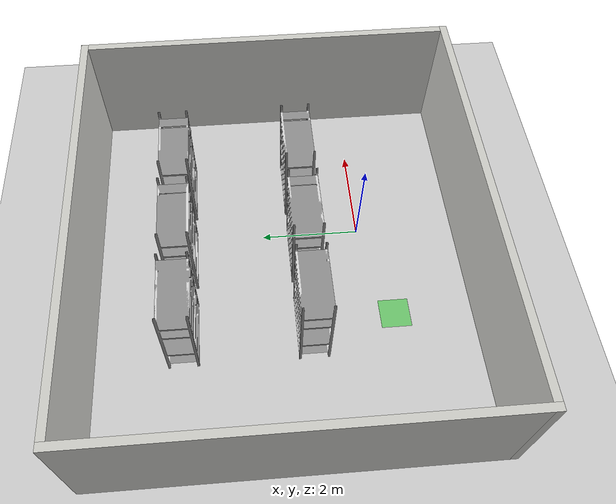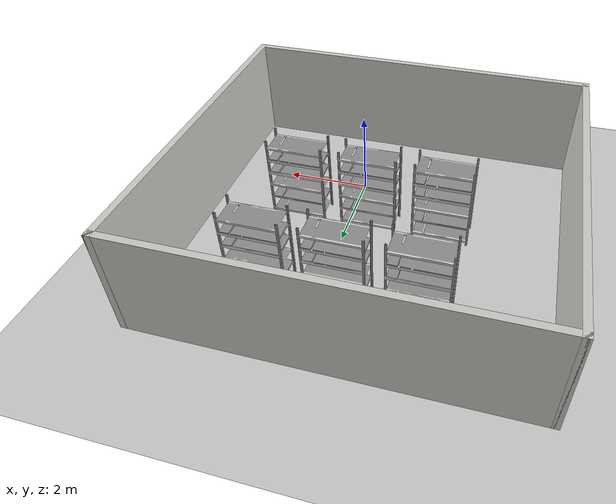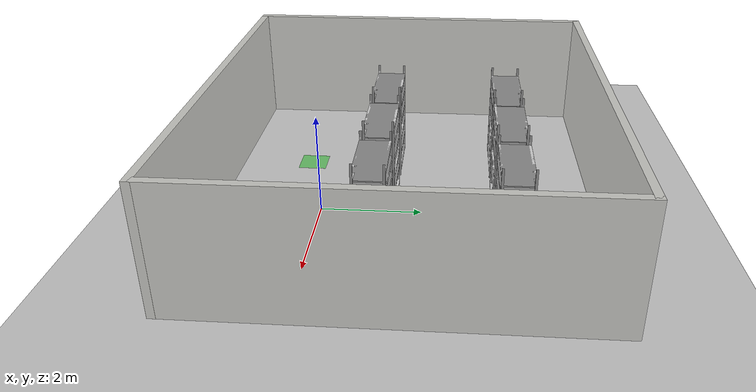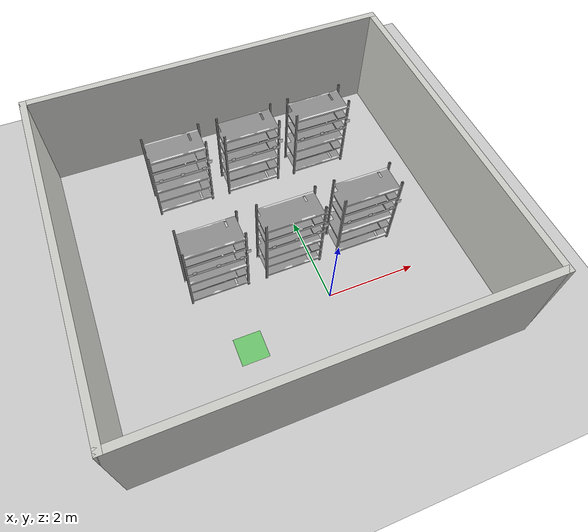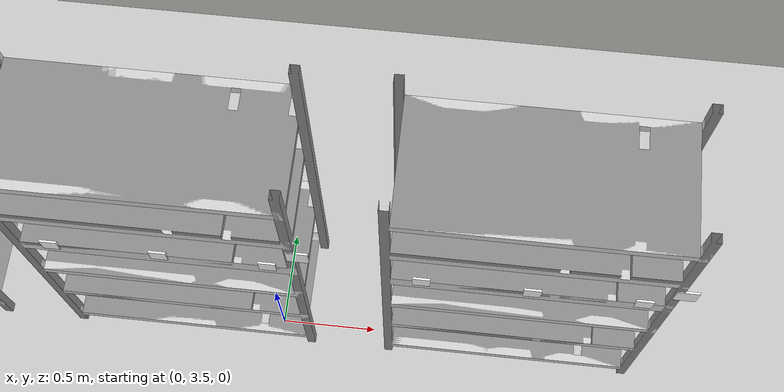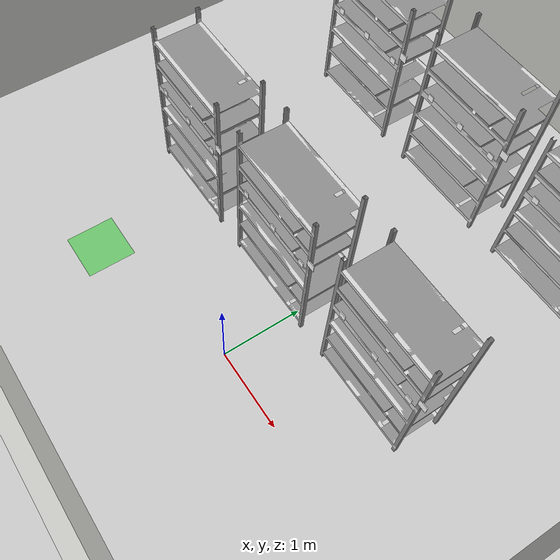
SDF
<sdf version='1.7'>
  <world name='default'>
    <model name='ground_plane'>
      <static>1</static>
      <link name='link'>
        <collision name='collision'>
          <geometry>
            <plane>
              <normal>0 0 1</normal>
              <size>100 100</size>
            </plane>
          </geometry>
          <surface>
            <friction>
              <ode>
                <mu>100</mu>
                <mu2>50</mu2>
              </ode>
              <torsional>
                <ode/>
              </torsional>
            </friction>
            <contact>
              <ode/>
            </contact>
            <bounce/>
          </surface>
          <max_contacts>10</max_contacts>
        </collision>
        <visual name='visual'>
          <cast_shadows>0</cast_shadows>
          <geometry>
            <plane>
              <normal>0 0 1</normal>
              <size>100 100</size>
            </plane>
          </geometry>
          <material>
            <script>
              <uri>file://media/materials/scripts/gazebo.material</uri>
              <name>Gazebo/Grey</name>
            </script>
          </material>
        </visual>
        <self_collide>0</self_collide>
        <enable_wind>0</enable_wind>
        <kinematic>0</kinematic>
      </link>
    </model>
    <light name='sun' type='directional'>
      <cast_shadows>1</cast_shadows>
      <pose>0 0 10 0 -0 0</pose>
      <diffuse>0.8 0.8 0.8 1</diffuse>
      <specular>0.2 0.2 0.2 1</specular>
      <attenuation>
        <range>1000</range>
        <constant>0.9</constant>
        <linear>0.01</linear>
        <quadratic>0.001</quadratic>
      </attenuation>
      <direction>-0.5 0.1 -0.9</direction>
      <spot>
        <inner_angle>0</inner_angle>
        <outer_angle>0</outer_angle>
        <falloff>0</falloff>
      </spot>
    </light>
    <model name='spawn_area_marker'>
      <static>1</static>
      <pose>-2 -0.5 0 0 -0 0</pose>
      <link name='spawn_area_link'>
        <visual name='visual'>
          <geometry>
            <box>
              <size>0.6 0.6 0.001</size>
            </box>
          </geometry>
          <material>
            <ambient>0.1 0.8 0.1 0.5</ambient>
            <diffuse>0.1 0.8 0.1 0.5</diffuse>
          </material>
          <pose>0 0 0.0005 0 -0 0</pose>
        </visual>
        <self_collide>0</self_collide>
        <enable_wind>0</enable_wind>
        <kinematic>0</kinematic>
      </link>
    </model>
    <model name='shelf_6_r1_c1'>
      <static>1</static>
      <link name='link'>
        <collision name='collision'>
          <pose>-0.665 -0.3 1 0 -0 0</pose>
          <geometry>
            <box>
              <size>1.32 0.6 2</size>
            </box>
          </geometry>
          <max_contacts>10</max_contacts>
          <surface>
            <contact>
              <ode/>
            </contact>
            <bounce/>
            <friction>
              <torsional>
                <ode/>
              </torsional>
              <ode/>
            </friction>
          </surface>
        </collision>
        <visual name='visual'>
          <geometry>
            <mesh>
              <uri>model://shelf_6/meshes/shelf_6.dae</uri>
              <scale>0.001 0.001 0.001</scale>
            </mesh>
          </geometry>
        </visual>
        <self_collide>0</self_collide>
        <enable_wind>0</enable_wind>
        <kinematic>0</kinematic>
      </link>
      <pose>-1.5 1.5 0 0 -0 0</pose>
    </model>
    <model name='stag_hd17_s1'>
      <static>1</static>
      <pose>-1.5 0.9 1.3915 1.5708 -0 0</pose>
      <link name='marker_link'>
        <collision name='collision'>
          <geometry>
            <box>
              <size>0.1 0.1 0.01</size>
            </box>
          </geometry>
          <max_contacts>10</max_contacts>
          <surface>
            <contact>
              <ode/>
            </contact>
            <bounce/>
            <friction>
              <torsional>
                <ode/>
              </torsional>
              <ode/>
            </friction>
          </surface>
        </collision>
        <visual name='visual'>
          <geometry>
            <box>
              <size>0.1 0.1 0.01</size>
            </box>
          </geometry>
          <material>
            <script>
              <uri>model://STag_marker_HD17/materials/scripts</uri>
              <uri>model://STag_marker_HD17/materials/textures</uri>
              <name>STagMarkerHD17/marker_00000</name>
            </script>
            <ambient>1 1 1 1</ambient>
            <diffuse>1 1 1 1</diffuse>
          </material>
          <pose>0 0 0.001 0 -0 0</pose>
        </visual>
        <self_collide>0</self_collide>
        <enable_wind>0</enable_wind>
        <kinematic>0</kinematic>
      </link>
    </model>
    <model name='stag_hd15_s1_m1'>
      <static>1</static>
      <pose>-2.65 0.9 1.227 1.5708 -0 0</pose>
      <link name='marker_link'>
        <collision name='collision'>
          <geometry>
            <box>
              <size>0.08 0.08 0.01</size>
            </box>
          </geometry>
          <max_contacts>10</max_contacts>
          <surface>
            <contact>
              <ode/>
            </contact>
            <bounce/>
            <friction>
              <torsional>
                <ode/>
              </torsional>
              <ode/>
            </friction>
          </surface>
        </collision>
        <visual name='visual'>
          <geometry>
            <box>
              <size>0.08 0.08 0.01</size>
            </box>
          </geometry>
          <material>
            <script>
              <uri>model://STag_marker_HD15/materials/scripts</uri>
              <uri>model://STag_marker_HD15/materials/textures</uri>
              <name>STagMarkerHD15/marker_00000</name>
            </script>
            <ambient>1 1 1 1</ambient>
            <diffuse>1 1 1 1</diffuse>
          </material>
          <pose>0 0 0.001 0 -0 0</pose>
        </visual>
        <self_collide>0</self_collide>
        <enable_wind>0</enable_wind>
        <kinematic>0</kinematic>
      </link>
    </model>
    <model name='stag_hd15_s1_m2'>
      <static>1</static>
      <pose>-2.15 0.9 1.227 1.5708 -0 0</pose>
      <link name='marker_link'>
        <collision name='collision'>
          <geometry>
            <box>
              <size>0.08 0.08 0.01</size>
            </box>
          </geometry>
          <max_contacts>10</max_contacts>
          <surface>
            <contact>
              <ode/>
            </contact>
            <bounce/>
            <friction>
              <torsional>
                <ode/>
              </torsional>
              <ode/>
            </friction>
          </surface>
        </collision>
        <visual name='visual'>
          <geometry>
            <box>
              <size>0.08 0.08 0.01</size>
            </box>
          </geometry>
          <material>
            <script>
              <uri>model://STag_marker_HD15/materials/scripts</uri>
              <uri>model://STag_marker_HD15/materials/textures</uri>
              <name>STagMarkerHD15/marker_00001</name>
            </script>
            <ambient>1 1 1 1</ambient>
            <diffuse>1 1 1 1</diffuse>
          </material>
          <pose>0 0 0.001 0 -0 0</pose>
        </visual>
        <self_collide>0</self_collide>
        <enable_wind>0</enable_wind>
        <kinematic>0</kinematic>
      </link>
    </model>
    <model name='stag_hd15_s1_m3'>
      <static>1</static>
      <pose>-1.65 0.9 1.227 1.5708 -0 0</pose>
      <link name='marker_link'>
        <collision name='collision'>
          <geometry>
            <box>
              <size>0.08 0.08 0.01</size>
            </box>
          </geometry>
          <max_contacts>10</max_contacts>
          <surface>
            <contact>
              <ode/>
            </contact>
            <bounce/>
            <friction>
              <torsional>
                <ode/>
              </torsional>
              <ode/>
            </friction>
          </surface>
        </collision>
        <visual name='visual'>
          <geometry>
            <box>
              <size>0.08 0.08 0.01</size>
            </box>
          </geometry>
          <material>
            <script>
              <uri>model://STag_marker_HD15/materials/scripts</uri>
              <uri>model://STag_marker_HD15/materials/textures</uri>
              <name>STagMarkerHD15/marker_00002</name>
            </script>
            <ambient>1 1 1 1</ambient>
            <diffuse>1 1 1 1</diffuse>
          </material>
          <pose>0 0 0.001 0 -0 0</pose>
        </visual>
        <self_collide>0</self_collide>
        <enable_wind>0</enable_wind>
        <kinematic>0</kinematic>
      </link>
    </model>
    <model name='shelf_6_r1_c2'>
      <static>1</static>
      <link name='link'>
        <collision name='collision'>
          <pose>-0.665 -0.3 1 0 -0 0</pose>
          <geometry>
            <box>
              <size>1.32 0.6 2</size>
            </box>
          </geometry>
          <max_contacts>10</max_contacts>
          <surface>
            <contact>
              <ode/>
            </contact>
            <bounce/>
            <friction>
              <torsional>
                <ode/>
              </torsional>
              <ode/>
            </friction>
          </surface>
        </collision>
        <visual name='visual'>
          <geometry>
            <mesh>
              <uri>model://shelf_6/meshes/shelf_6.dae</uri>
              <scale>0.001 0.001 0.001</scale>
            </mesh>
          </geometry>
        </visual>
        <self_collide>0</self_collide>
        <enable_wind>0</enable_wind>
        <kinematic>0</kinematic>
      </link>
      <pose>0.2 1.5 0 0 -0 0</pose>
    </model>
    <model name='stag_hd17_s2'>
      <static>1</static>
      <pose>0.2 0.9 1.3915 1.5708 -0 0</pose>
      <link name='marker_link'>
        <collision name='collision'>
          <geometry>
            <box>
              <size>0.1 0.1 0.01</size>
            </box>
          </geometry>
          <max_contacts>10</max_contacts>
          <surface>
            <contact>
              <ode/>
            </contact>
            <bounce/>
            <friction>
              <torsional>
                <ode/>
              </torsional>
              <ode/>
            </friction>
          </surface>
        </collision>
        <visual name='visual'>
          <geometry>
            <box>
              <size>0.1 0.1 0.01</size>
            </box>
          </geometry>
          <material>
            <script>
              <uri>model://STag_marker_HD17/materials/scripts</uri>
              <uri>model://STag_marker_HD17/materials/textures</uri>
              <name>STagMarkerHD17/marker_00001</name>
            </script>
            <ambient>1 1 1 1</ambient>
            <diffuse>1 1 1 1</diffuse>
          </material>
          <pose>0 0 0.001 0 -0 0</pose>
        </visual>
        <self_collide>0</self_collide>
        <enable_wind>0</enable_wind>
        <kinematic>0</kinematic>
      </link>
    </model>
    <model name='stag_hd15_s2_m1'>
      <static>1</static>
      <pose>-0.95 0.9 1.227 1.5708 -0 0</pose>
      <link name='marker_link'>
        <collision name='collision'>
          <geometry>
            <box>
              <size>0.08 0.08 0.01</size>
            </box>
          </geometry>
          <max_contacts>10</max_contacts>
          <surface>
            <contact>
              <ode/>
            </contact>
            <bounce/>
            <friction>
              <torsional>
                <ode/>
              </torsional>
              <ode/>
            </friction>
          </surface>
        </collision>
        <visual name='visual'>
          <geometry>
            <box>
              <size>0.08 0.08 0.01</size>
            </box>
          </geometry>
          <material>
            <script>
              <uri>model://STag_marker_HD15/materials/scripts</uri>
              <uri>model://STag_marker_HD15/materials/textures</uri>
              <name>STagMarkerHD15/marker_00003</name>
            </script>
            <ambient>1 1 1 1</ambient>
            <diffuse>1 1 1 1</diffuse>
          </material>
          <pose>0 0 0.001 0 -0 0</pose>
        </visual>
        <self_collide>0</self_collide>
        <enable_wind>0</enable_wind>
        <kinematic>0</kinematic>
      </link>
    </model>
    <model name='stag_hd15_s2_m2'>
      <static>1</static>
      <pose>-0.45 0.9 1.227 1.5708 -0 0</pose>
      <link name='marker_link'>
        <collision name='collision'>
          <geometry>
            <box>
              <size>0.08 0.08 0.01</size>
            </box>
          </geometry>
          <max_contacts>10</max_contacts>
          <surface>
            <contact>
              <ode/>
            </contact>
            <bounce/>
            <friction>
              <torsional>
                <ode/>
              </torsional>
              <ode/>
            </friction>
          </surface>
        </collision>
        <visual name='visual'>
          <geometry>
            <box>
              <size>0.08 0.08 0.01</size>
            </box>
          </geometry>
          <material>
            <script>
              <uri>model://STag_marker_HD15/materials/scripts</uri>
              <uri>model://STag_marker_HD15/materials/textures</uri>
              <name>STagMarkerHD15/marker_00004</name>
            </script>
            <ambient>1 1 1 1</ambient>
            <diffuse>1 1 1 1</diffuse>
          </material>
          <pose>0 0 0.001 0 -0 0</pose>
        </visual>
        <self_collide>0</self_collide>
        <enable_wind>0</enable_wind>
        <kinematic>0</kinematic>
      </link>
    </model>
    <model name='stag_hd15_s2_m3'>
      <static>1</static>
      <pose>0.05 0.9 1.227 1.5708 -0 0</pose>
      <link name='marker_link'>
        <collision name='collision'>
          <geometry>
            <box>
              <size>0.08 0.08 0.01</size>
            </box>
          </geometry>
          <max_contacts>10</max_contacts>
          <surface>
            <contact>
              <ode/>
            </contact>
            <bounce/>
            <friction>
              <torsional>
                <ode/>
              </torsional>
              <ode/>
            </friction>
          </surface>
        </collision>
        <visual name='visual'>
          <geometry>
            <box>
              <size>0.08 0.08 0.01</size>
            </box>
          </geometry>
          <material>
            <script>
              <uri>model://STag_marker_HD15/materials/scripts</uri>
              <uri>model://STag_marker_HD15/materials/textures</uri>
              <name>STagMarkerHD15/marker_00005</name>
            </script>
            <ambient>1 1 1 1</ambient>
            <diffuse>1 1 1 1</diffuse>
          </material>
          <pose>0 0 0.001 0 -0 0</pose>
        </visual>
        <self_collide>0</self_collide>
        <enable_wind>0</enable_wind>
        <kinematic>0</kinematic>
      </link>
    </model>
    <model name='shelf_6_r1_c3'>
      <static>1</static>
      <link name='link'>
        <collision name='collision'>
          <pose>-0.665 -0.3 1 0 -0 0</pose>
          <geometry>
            <box>
              <size>1.32 0.6 2</size>
            </box>
          </geometry>
          <max_contacts>10</max_contacts>
          <surface>
            <contact>
              <ode/>
            </contact>
            <bounce/>
            <friction>
              <torsional>
                <ode/>
              </torsional>
              <ode/>
            </friction>
          </surface>
        </collision>
        <visual name='visual'>
          <geometry>
            <mesh>
              <uri>model://shelf_6/meshes/shelf_6.dae</uri>
              <scale>0.001 0.001 0.001</scale>
            </mesh>
          </geometry>
        </visual>
        <self_collide>0</self_collide>
        <enable_wind>0</enable_wind>
        <kinematic>0</kinematic>
      </link>
      <pose>1.9 1.5 0 0 -0 0</pose>
    </model>
    <model name='stag_hd17_s3'>
      <static>1</static>
      <pose>1.9 0.9 1.3915 1.5708 -0 0</pose>
      <link name='marker_link'>
        <collision name='collision'>
          <geometry>
            <box>
              <size>0.1 0.1 0.01</size>
            </box>
          </geometry>
          <max_contacts>10</max_contacts>
          <surface>
            <contact>
              <ode/>
            </contact>
            <bounce/>
            <friction>
              <torsional>
                <ode/>
              </torsional>
              <ode/>
            </friction>
          </surface>
        </collision>
        <visual name='visual'>
          <geometry>
            <box>
              <size>0.1 0.1 0.01</size>
            </box>
          </geometry>
          <material>
            <script>
              <uri>model://STag_marker_HD17/materials/scripts</uri>
              <uri>model://STag_marker_HD17/materials/textures</uri>
              <name>STagMarkerHD17/marker_00002</name>
            </script>
            <ambient>1 1 1 1</ambient>
            <diffuse>1 1 1 1</diffuse>
          </material>
          <pose>0 0 0.001 0 -0 0</pose>
        </visual>
        <self_collide>0</self_collide>
        <enable_wind>0</enable_wind>
        <kinematic>0</kinematic>
      </link>
    </model>
    <model name='stag_hd15_s3_m1'>
      <static>1</static>
      <pose>0.75 0.9 1.227 1.5708 -0 0</pose>
      <link name='marker_link'>
        <collision name='collision'>
          <geometry>
            <box>
              <size>0.08 0.08 0.01</size>
            </box>
          </geometry>
          <max_contacts>10</max_contacts>
          <surface>
            <contact>
              <ode/>
            </contact>
            <bounce/>
            <friction>
              <torsional>
                <ode/>
              </torsional>
              <ode/>
            </friction>
          </surface>
        </collision>
        <visual name='visual'>
          <geometry>
            <box>
              <size>0.08 0.08 0.01</size>
            </box>
          </geometry>
          <material>
            <script>
              <uri>model://STag_marker_HD15/materials/scripts</uri>
              <uri>model://STag_marker_HD15/materials/textures</uri>
              <name>STagMarkerHD15/marker_00006</name>
            </script>
            <ambient>1 1 1 1</ambient>
            <diffuse>1 1 1 1</diffuse>
          </material>
          <pose>0 0 0.001 0 -0 0</pose>
        </visual>
        <self_collide>0</self_collide>
        <enable_wind>0</enable_wind>
        <kinematic>0</kinematic>
      </link>
    </model>
    <model name='stag_hd15_s3_m2'>
      <static>1</static>
      <pose>1.25 0.9 1.227 1.5708 -0 0</pose>
      <link name='marker_link'>
        <collision name='collision'>
          <geometry>
            <box>
              <size>0.08 0.08 0.01</size>
            </box>
          </geometry>
          <max_contacts>10</max_contacts>
          <surface>
            <contact>
              <ode/>
            </contact>
            <bounce/>
            <friction>
              <torsional>
                <ode/>
              </torsional>
              <ode/>
            </friction>
          </surface>
        </collision>
        <visual name='visual'>
          <geometry>
            <box>
              <size>0.08 0.08 0.01</size>
            </box>
          </geometry>
          <material>
            <script>
              <uri>model://STag_marker_HD15/materials/scripts</uri>
              <uri>model://STag_marker_HD15/materials/textures</uri>
              <name>STagMarkerHD15/marker_00007</name>
            </script>
            <ambient>1 1 1 1</ambient>
            <diffuse>1 1 1 1</diffuse>
          </material>
          <pose>0 0 0.001 0 -0 0</pose>
        </visual>
        <self_collide>0</self_collide>
        <enable_wind>0</enable_wind>
        <kinematic>0</kinematic>
      </link>
    </model>
    <model name='stag_hd15_s3_m3'>
      <static>1</static>
      <pose>1.75 0.9 1.227 1.5708 -0 0</pose>
      <link name='marker_link'>
        <collision name='collision'>
          <geometry>
            <box>
              <size>0.08 0.08 0.01</size>
            </box>
          </geometry>
          <max_contacts>10</max_contacts>
          <surface>
            <contact>
              <ode/>
            </contact>
            <bounce/>
            <friction>
              <torsional>
                <ode/>
              </torsional>
              <ode/>
            </friction>
          </surface>
        </collision>
        <visual name='visual'>
          <geometry>
            <box>
              <size>0.08 0.08 0.01</size>
            </box>
          </geometry>
          <material>
            <script>
              <uri>model://STag_marker_HD15/materials/scripts</uri>
              <uri>model://STag_marker_HD15/materials/textures</uri>
              <name>STagMarkerHD15/marker_00008</name>
            </script>
            <ambient>1 1 1 1</ambient>
            <diffuse>1 1 1 1</diffuse>
          </material>
          <pose>0 0 0.001 0 -0 0</pose>
        </visual>
        <self_collide>0</self_collide>
        <enable_wind>0</enable_wind>
        <kinematic>0</kinematic>
      </link>
    </model>
    <model name='shelf_6_r2_c1'>
      <static>1</static>
      <link name='link'>
        <collision name='collision'>
          <pose>-0.665 -0.3 1 0 -0 0</pose>
          <geometry>
            <box>
              <size>1.32 0.6 2</size>
            </box>
          </geometry>
          <max_contacts>10</max_contacts>
          <surface>
            <contact>
              <ode/>
            </contact>
            <bounce/>
            <friction>
              <torsional>
                <ode/>
              </torsional>
              <ode/>
            </friction>
          </surface>
        </collision>
        <visual name='visual'>
          <geometry>
            <mesh>
              <uri>model://shelf_6/meshes/shelf_6.dae</uri>
              <scale>0.001 0.001 0.001</scale>
            </mesh>
          </geometry>
        </visual>
        <self_collide>0</self_collide>
        <enable_wind>0</enable_wind>
        <kinematic>0</kinematic>
      </link>
      <pose>-1.5 4 0 0 -0 0</pose>
    </model>
    <model name='stag_hd17_s4'>
      <static>1</static>
      <pose>-1.5 3.4 1.3915 1.5708 -0 0</pose>
      <link name='marker_link'>
        <collision name='collision'>
          <geometry>
            <box>
              <size>0.1 0.1 0.01</size>
            </box>
          </geometry>
          <max_contacts>10</max_contacts>
          <surface>
            <contact>
              <ode/>
            </contact>
            <bounce/>
            <friction>
              <torsional>
                <ode/>
              </torsional>
              <ode/>
            </friction>
          </surface>
        </collision>
        <visual name='visual'>
          <geometry>
            <box>
              <size>0.1 0.1 0.01</size>
            </box>
          </geometry>
          <material>
            <script>
              <uri>model://STag_marker_HD17/materials/scripts</uri>
              <uri>model://STag_marker_HD17/materials/textures</uri>
              <name>STagMarkerHD17/marker_00003</name>
            </script>
            <ambient>1 1 1 1</ambient>
            <diffuse>1 1 1 1</diffuse>
          </material>
          <pose>0 0 0.001 0 -0 0</pose>
        </visual>
        <self_collide>0</self_collide>
        <enable_wind>0</enable_wind>
        <kinematic>0</kinematic>
      </link>
    </model>
    <model name='stag_hd15_s4_m1'>
      <static>1</static>
      <pose>-2.65 3.4 1.227 1.5708 -0 0</pose>
      <link name='marker_link'>
        <collision name='collision'>
          <geometry>
            <box>
              <size>0.08 0.08 0.01</size>
            </box>
          </geometry>
          <max_contacts>10</max_contacts>
          <surface>
            <contact>
              <ode/>
            </contact>
            <bounce/>
            <friction>
              <torsional>
                <ode/>
              </torsional>
              <ode/>
            </friction>
          </surface>
        </collision>
        <visual name='visual'>
          <geometry>
            <box>
              <size>0.08 0.08 0.01</size>
            </box>
          </geometry>
          <material>
            <script>
              <uri>model://STag_marker_HD15/materials/scripts</uri>
              <uri>model://STag_marker_HD15/materials/textures</uri>
              <name>STagMarkerHD15/marker_00009</name>
            </script>
            <ambient>1 1 1 1</ambient>
            <diffuse>1 1 1 1</diffuse>
          </material>
          <pose>0 0 0.001 0 -0 0</pose>
        </visual>
        <self_collide>0</self_collide>
        <enable_wind>0</enable_wind>
        <kinematic>0</kinematic>
      </link>
    </model>
    <model name='stag_hd15_s4_m2'>
      <static>1</static>
      <pose>-2.15 3.4 1.227 1.5708 -0 0</pose>
      <link name='marker_link'>
        <collision name='collision'>
          <geometry>
            <box>
              <size>0.08 0.08 0.01</size>
            </box>
          </geometry>
          <max_contacts>10</max_contacts>
          <surface>
            <contact>
              <ode/>
            </contact>
            <bounce/>
            <friction>
              <torsional>
                <ode/>
              </torsional>
              <ode/>
            </friction>
          </surface>
        </collision>
        <visual name='visual'>
          <geometry>
            <box>
              <size>0.08 0.08 0.01</size>
            </box>
          </geometry>
          <material>
            <script>
              <uri>model://STag_marker_HD15/materials/scripts</uri>
              <uri>model://STag_marker_HD15/materials/textures</uri>
              <name>STagMarkerHD15/marker_00010</name>
            </script>
            <ambient>1 1 1 1</ambient>
            <diffuse>1 1 1 1</diffuse>
          </material>
          <pose>0 0 0.001 0 -0 0</pose>
        </visual>
        <self_collide>0</self_collide>
        <enable_wind>0</enable_wind>
        <kinematic>0</kinematic>
      </link>
    </model>
    <model name='stag_hd15_s4_m3'>
      <static>1</static>
      <pose>-1.65 3.4 1.227 1.5708 -0 0</pose>
      <link name='marker_link'>
        <collision name='collision'>
          <geometry>
            <box>
              <size>0.08 0.08 0.01</size>
            </box>
          </geometry>
          <max_contacts>10</max_contacts>
          <surface>
            <contact>
              <ode/>
            </contact>
            <bounce/>
            <friction>
              <torsional>
                <ode/>
              </torsional>
              <ode/>
            </friction>
          </surface>
        </collision>
        <visual name='visual'>
          <geometry>
            <box>
              <size>0.08 0.08 0.01</size>
            </box>
          </geometry>
          <material>
            <script>
              <uri>model://STag_marker_HD15/materials/scripts</uri>
              <uri>model://STag_marker_HD15/materials/textures</uri>
              <name>STagMarkerHD15/marker_00011</name>
            </script>
            <ambient>1 1 1 1</ambient>
            <diffuse>1 1 1 1</diffuse>
          </material>
          <pose>0 0 0.001 0 -0 0</pose>
        </visual>
        <self_collide>0</self_collide>
        <enable_wind>0</enable_wind>
        <kinematic>0</kinematic>
      </link>
    </model>
    <model name='shelf_6_r2_c2'>
      <static>1</static>
      <link name='link'>
        <collision name='collision'>
          <pose>-0.665 -0.3 1 0 -0 0</pose>
          <geometry>
            <box>
              <size>1.32 0.6 2</size>
            </box>
          </geometry>
          <max_contacts>10</max_contacts>
          <surface>
            <contact>
              <ode/>
            </contact>
            <bounce/>
            <friction>
              <torsional>
                <ode/>
              </torsional>
              <ode/>
            </friction>
          </surface>
        </collision>
        <visual name='visual'>
          <geometry>
            <mesh>
              <uri>model://shelf_6/meshes/shelf_6.dae</uri>
              <scale>0.001 0.001 0.001</scale>
            </mesh>
          </geometry>
        </visual>
        <self_collide>0</self_collide>
        <enable_wind>0</enable_wind>
        <kinematic>0</kinematic>
      </link>
      <pose>0.2 4 0 0 -0 0</pose>
    </model>
    <model name='stag_hd17_s5'>
      <static>1</static>
      <pose>0.2 3.4 1.3915 1.5708 -0 0</pose>
      <link name='marker_link'>
        <collision name='collision'>
          <geometry>
            <box>
              <size>0.1 0.1 0.01</size>
            </box>
          </geometry>
          <max_contacts>10</max_contacts>
          <surface>
            <contact>
              <ode/>
            </contact>
            <bounce/>
            <friction>
              <torsional>
                <ode/>
              </torsional>
              <ode/>
            </friction>
          </surface>
        </collision>
        <visual name='visual'>
          <geometry>
            <box>
              <size>0.1 0.1 0.01</size>
            </box>
          </geometry>
          <material>
            <script>
              <uri>model://STag_marker_HD17/materials/scripts</uri>
              <uri>model://STag_marker_HD17/materials/textures</uri>
              <name>STagMarkerHD17/marker_00004</name>
            </script>
            <ambient>1 1 1 1</ambient>
            <diffuse>1 1 1 1</diffuse>
          </material>
          <pose>0 0 0.001 0 -0 0</pose>
        </visual>
        <self_collide>0</self_collide>
        <enable_wind>0</enable_wind>
        <kinematic>0</kinematic>
      </link>
    </model>
    <model name='stag_hd15_s5_m1'>
      <static>1</static>
      <pose>-0.95 3.4 1.227 1.5708 -0 0</pose>
      <link name='marker_link'>
        <collision name='collision'>
          <geometry>
            <box>
              <size>0.08 0.08 0.01</size>
            </box>
          </geometry>
          <max_contacts>10</max_contacts>
          <surface>
            <contact>
              <ode/>
            </contact>
            <bounce/>
            <friction>
              <torsional>
                <ode/>
              </torsional>
              <ode/>
            </friction>
          </surface>
        </collision>
        <visual name='visual'>
          <geometry>
            <box>
              <size>0.08 0.08 0.01</size>
            </box>
          </geometry>
          <material>
            <script>
              <uri>model://STag_marker_HD15/materials/scripts</uri>
              <uri>model://STag_marker_HD15/materials/textures</uri>
              <name>STagMarkerHD15/marker_00012</name>
            </script>
            <ambient>1 1 1 1</ambient>
            <diffuse>1 1 1 1</diffuse>
          </material>
          <pose>0 0 0.001 0 -0 0</pose>
        </visual>
        <self_collide>0</self_collide>
        <enable_wind>0</enable_wind>
        <kinematic>0</kinematic>
      </link>
    </model>
    <model name='stag_hd15_s5_m2'>
      <static>1</static>
      <pose>-0.45 3.4 1.227 1.5708 -0 0</pose>
      <link name='marker_link'>
        <collision name='collision'>
          <geometry>
            <box>
              <size>0.08 0.08 0.01</size>
            </box>
          </geometry>
          <max_contacts>10</max_contacts>
          <surface>
            <contact>
              <ode/>
            </contact>
            <bounce/>
            <friction>
              <torsional>
                <ode/>
              </torsional>
              <ode/>
            </friction>
          </surface>
        </collision>
        <visual name='visual'>
          <geometry>
            <box>
              <size>0.08 0.08 0.01</size>
            </box>
          </geometry>
          <material>
            <script>
              <uri>model://STag_marker_HD15/materials/scripts</uri>
              <uri>model://STag_marker_HD15/materials/textures</uri>
              <name>STagMarkerHD15/marker_00013</name>
            </script>
            <ambient>1 1 1 1</ambient>
            <diffuse>1 1 1 1</diffuse>
          </material>
          <pose>0 0 0.001 0 -0 0</pose>
        </visual>
        <self_collide>0</self_collide>
        <enable_wind>0</enable_wind>
        <kinematic>0</kinematic>
      </link>
    </model>
    <model name='stag_hd15_s5_m3'>
      <static>1</static>
      <pose>0.05 3.4 1.227 1.5708 -0 0</pose>
      <link name='marker_link'>
        <collision name='collision'>
          <geometry>
            <box>
              <size>0.08 0.08 0.01</size>
            </box>
          </geometry>
          <max_contacts>10</max_contacts>
          <surface>
            <contact>
              <ode/>
            </contact>
            <bounce/>
            <friction>
              <torsional>
                <ode/>
              </torsional>
              <ode/>
            </friction>
          </surface>
        </collision>
        <visual name='visual'>
          <geometry>
            <box>
              <size>0.08 0.08 0.01</size>
            </box>
          </geometry>
          <material>
            <script>
              <uri>model://STag_marker_HD15/materials/scripts</uri>
              <uri>model://STag_marker_HD15/materials/textures</uri>
              <name>STagMarkerHD15/marker_00014</name>
            </script>
            <ambient>1 1 1 1</ambient>
            <diffuse>1 1 1 1</diffuse>
          </material>
          <pose>0 0 0.001 0 -0 0</pose>
        </visual>
        <self_collide>0</self_collide>
        <enable_wind>0</enable_wind>
        <kinematic>0</kinematic>
      </link>
    </model>
    <model name='shelf_6_r2_c3'>
      <static>1</static>
      <link name='link'>
        <collision name='collision'>
          <pose>-0.665 -0.3 1 0 -0 0</pose>
          <geometry>
            <box>
              <size>1.32 0.6 2</size>
            </box>
          </geometry>
          <max_contacts>10</max_contacts>
          <surface>
            <contact>
              <ode/>
            </contact>
            <bounce/>
            <friction>
              <torsional>
                <ode/>
              </torsional>
              <ode/>
            </friction>
          </surface>
        </collision>
        <visual name='visual'>
          <geometry>
            <mesh>
              <uri>model://shelf_6/meshes/shelf_6.dae</uri>
              <scale>0.001 0.001 0.001</scale>
            </mesh>
          </geometry>
        </visual>
        <self_collide>0</self_collide>
        <enable_wind>0</enable_wind>
        <kinematic>0</kinematic>
      </link>
      <pose>1.9 4 0 0 -0 0</pose>
    </model>
    <model name='stag_hd17_s6'>
      <static>1</static>
      <pose>1.9 3.4 1.3915 1.5708 -0 0</pose>
      <link name='marker_link'>
        <collision name='collision'>
          <geometry>
            <box>
              <size>0.1 0.1 0.01</size>
            </box>
          </geometry>
          <max_contacts>10</max_contacts>
          <surface>
            <contact>
              <ode/>
            </contact>
            <bounce/>
            <friction>
              <torsional>
                <ode/>
              </torsional>
              <ode/>
            </friction>
          </surface>
        </collision>
        <visual name='visual'>
          <geometry>
            <box>
              <size>0.1 0.1 0.01</size>
            </box>
          </geometry>
          <material>
            <script>
              <uri>model://STag_marker_HD17/materials/scripts</uri>
              <uri>model://STag_marker_HD17/materials/textures</uri>
              <name>STagMarkerHD17/marker_00005</name>
            </script>
            <ambient>1 1 1 1</ambient>
            <diffuse>1 1 1 1</diffuse>
          </material>
          <pose>0 0 0.001 0 -0 0</pose>
        </visual>
        <self_collide>0</self_collide>
        <enable_wind>0</enable_wind>
        <kinematic>0</kinematic>
      </link>
    </model>
    <model name='stag_hd15_s6_m1'>
      <static>1</static>
      <pose>0.75 3.4 1.227 1.5708 -0 0</pose>
      <link name='marker_link'>
        <collision name='collision'>
          <geometry>
            <box>
              <size>0.08 0.08 0.01</size>
            </box>
          </geometry>
          <max_contacts>10</max_contacts>
          <surface>
            <contact>
              <ode/>
            </contact>
            <bounce/>
            <friction>
              <torsional>
                <ode/>
              </torsional>
              <ode/>
            </friction>
          </surface>
        </collision>
        <visual name='visual'>
          <geometry>
            <box>
              <size>0.08 0.08 0.01</size>
            </box>
          </geometry>
          <material>
            <script>
              <uri>model://STag_marker_HD15/materials/scripts</uri>
              <uri>model://STag_marker_HD15/materials/textures</uri>
              <name>STagMarkerHD15/marker_00015</name>
            </script>
            <ambient>1 1 1 1</ambient>
            <diffuse>1 1 1 1</diffuse>
          </material>
          <pose>0 0 0.001 0 -0 0</pose>
        </visual>
        <self_collide>0</self_collide>
        <enable_wind>0</enable_wind>
        <kinematic>0</kinematic>
      </link>
    </model>
    <model name='stag_hd15_s6_m2'>
      <static>1</static>
      <pose>1.25 3.4 1.227 1.5708 -0 0</pose>
      <link name='marker_link'>
        <collision name='collision'>
          <geometry>
            <box>
              <size>0.08 0.08 0.01</size>
            </box>
          </geometry>
          <max_contacts>10</max_contacts>
          <surface>
            <contact>
              <ode/>
            </contact>
            <bounce/>
            <friction>
              <torsional>
                <ode/>
              </torsional>
              <ode/>
            </friction>
          </surface>
        </collision>
        <visual name='visual'>
          <geometry>
            <box>
              <size>0.08 0.08 0.01</size>
            </box>
          </geometry>
          <material>
            <script>
              <uri>model://STag_marker_HD15/materials/scripts</uri>
              <uri>model://STag_marker_HD15/materials/textures</uri>
              <name>STagMarkerHD15/marker_00016</name>
            </script>
            <ambient>1 1 1 1</ambient>
            <diffuse>1 1 1 1</diffuse>
          </material>
          <pose>0 0 0.001 0 -0 0</pose>
        </visual>
        <self_collide>0</self_collide>
        <enable_wind>0</enable_wind>
        <kinematic>0</kinematic>
      </link>
    </model>
    <model name='stag_hd15_s6_m3'>
      <static>1</static>
      <pose>1.75 3.4 1.227 1.5708 -0 0</pose>
      <link name='marker_link'>
        <collision name='collision'>
          <geometry>
            <box>
              <size>0.08 0.08 0.01</size>
            </box>
          </geometry>
          <max_contacts>10</max_contacts>
          <surface>
            <contact>
              <ode/>
            </contact>
            <bounce/>
            <friction>
              <torsional>
                <ode/>
              </torsional>
              <ode/>
            </friction>
          </surface>
        </collision>
        <visual name='visual'>
          <geometry>
            <box>
              <size>0.08 0.08 0.01</size>
            </box>
          </geometry>
          <material>
            <script>
              <uri>model://STag_marker_HD15/materials/scripts</uri>
              <uri>model://STag_marker_HD15/materials/textures</uri>
              <name>STagMarkerHD15/marker_00017</name>
            </script>
            <ambient>1 1 1 1</ambient>
            <diffuse>1 1 1 1</diffuse>
          </material>
          <pose>0 0 0.001 0 -0 0</pose>
        </visual>
        <self_collide>0</self_collide>
        <enable_wind>0</enable_wind>
        <kinematic>0</kinematic>
      </link>
    </model>
    <gravity>0 0 -9.8</gravity>
    <magnetic_field>6e-06 2.3e-05 -4.2e-05</magnetic_field>
    <atmosphere type='adiabatic'/>
    <physics type='ode'>
      <max_step_size>0.001</max_step_size>
      <real_time_factor>1</real_time_factor>
      <real_time_update_rate>1000</real_time_update_rate>
    </physics>
    <scene>
      <ambient>0.4 0.4 0.4 1</ambient>
      <background>0.7 0.7 0.7 1</background>
      <shadows>1</shadows>
    </scene>
    <audio>
      <device>default</device>
    </audio>
    <wind/>
    <spherical_coordinates>
      <surface_model>EARTH_WGS84</surface_model>
      <latitude_deg>0</latitude_deg>
      <longitude_deg>0</longitude_deg>
      <elevation>0</elevation>
      <heading_deg>0</heading_deg>
    </spherical_coordinates>
    <model name='walls_astribot'>
      <pose>-0.771121 1.67751 0 0 -0 0</pose>
      <link name='Wall_10'>
        <collision name='Wall_10_Collision'>
          <geometry>
            <box>
              <size>8.5 0.15 2.5</size>
            </box>
          </geometry>
          <pose>0 0 1.25 0 -0 0</pose>
          <max_contacts>10</max_contacts>
          <surface>
            <contact>
              <ode/>
            </contact>
            <bounce/>
            <friction>
              <torsional>
                <ode/>
              </torsional>
              <ode/>
            </friction>
          </surface>
        </collision>
        <visual name='Wall_10_Visual'>
          <pose>0 0 1.25 0 -0 0</pose>
          <geometry>
            <box>
              <size>8.5 0.15 2.5</size>
            </box>
          </geometry>
          <material>
            <script>
              <uri>file://media/materials/scripts/gazebo.material</uri>
              <name>Gazebo/CeilingTiled</name>
            </script>
            <ambient>1 1 1 1</ambient>
          </material>
          <meta>
            <layer>0</layer>
          </meta>
        </visual>
        <pose>-0 3.8 0 0 -0 0</pose>
        <self_collide>0</self_collide>
        <enable_wind>0</enable_wind>
        <kinematic>0</kinematic>
      </link>
      <link name='Wall_11'>
        <collision name='Wall_11_Collision'>
          <geometry>
            <box>
              <size>7.75 0.15 2.5</size>
            </box>
          </geometry>
          <pose>0 0 1.25 0 -0 0</pose>
          <max_contacts>10</max_contacts>
          <surface>
            <contact>
              <ode/>
            </contact>
            <bounce/>
            <friction>
              <torsional>
                <ode/>
              </torsional>
              <ode/>
            </friction>
          </surface>
        </collision>
        <visual name='Wall_11_Visual'>
          <pose>0 0 1.25 0 -0 0</pose>
          <geometry>
            <box>
              <size>7.75 0.15 2.5</size>
            </box>
          </geometry>
          <material>
            <script>
              <uri>file://media/materials/scripts/gazebo.material</uri>
              <name>Gazebo/CeilingTiled</name>
            </script>
            <ambient>1 1 1 1</ambient>
          </material>
          <meta>
            <layer>0</layer>
          </meta>
        </visual>
        <pose>4.175 -0 0 0 -0 -1.5708</pose>
        <self_collide>0</self_collide>
        <enable_wind>0</enable_wind>
        <kinematic>0</kinematic>
      </link>
      <link name='Wall_7'>
        <collision name='Wall_7_Collision'>
          <geometry>
            <box>
              <size>8.5 0.15 2.5</size>
            </box>
          </geometry>
          <pose>0 0 1.25 0 -0 0</pose>
          <max_contacts>10</max_contacts>
          <surface>
            <contact>
              <ode/>
            </contact>
            <bounce/>
            <friction>
              <torsional>
                <ode/>
              </torsional>
              <ode/>
            </friction>
          </surface>
        </collision>
        <visual name='Wall_7_Visual'>
          <pose>0 0 1.25 0 -0 0</pose>
          <geometry>
            <box>
              <size>8.5 0.15 2.5</size>
            </box>
          </geometry>
          <material>
            <script>
              <uri>file://media/materials/scripts/gazebo.material</uri>
              <name>Gazebo/CeilingTiled</name>
            </script>
            <ambient>1 1 1 1</ambient>
          </material>
          <meta>
            <layer>0</layer>
          </meta>
        </visual>
        <pose>-0 -3.8 0 0 -0 0</pose>
        <self_collide>0</self_collide>
        <enable_wind>0</enable_wind>
        <kinematic>0</kinematic>
      </link>
      <link name='Wall_9'>
        <collision name='Wall_9_Collision'>
          <geometry>
            <box>
              <size>7.75 0.15 2.5</size>
            </box>
          </geometry>
          <pose>0 0 1.25 0 -0 0</pose>
          <max_contacts>10</max_contacts>
          <surface>
            <contact>
              <ode/>
            </contact>
            <bounce/>
            <friction>
              <torsional>
                <ode/>
              </torsional>
              <ode/>
            </friction>
          </surface>
        </collision>
        <visual name='Wall_9_Visual'>
          <pose>0 0 1.25 0 -0 0</pose>
          <geometry>
            <box>
              <size>7.75 0.15 2.5</size>
            </box>
          </geometry>
          <material>
            <script>
              <uri>file://media/materials/scripts/gazebo.material</uri>
              <name>Gazebo/CeilingTiled</name>
            </script>
            <ambient>1 1 1 1</ambient>
          </material>
          <meta>
            <layer>0</layer>
          </meta>
        </visual>
        <pose>-4.175 -0 0 0 -0 1.5708</pose>
        <self_collide>0</self_collide>
        <enable_wind>0</enable_wind>
        <kinematic>0</kinematic>
      </link>
      <static>1</static>
    </model>
    <gui fullscreen='0'>
      <camera name='user_camera'>
        <pose>4.17152 -2.29498 11.7118 0 1.12364 2.70019</pose>
        <view_controller>orbit</view_controller>
        <projection_type>perspective</projection_type>
      </camera>
    </gui>
  </world>
</sdf>
